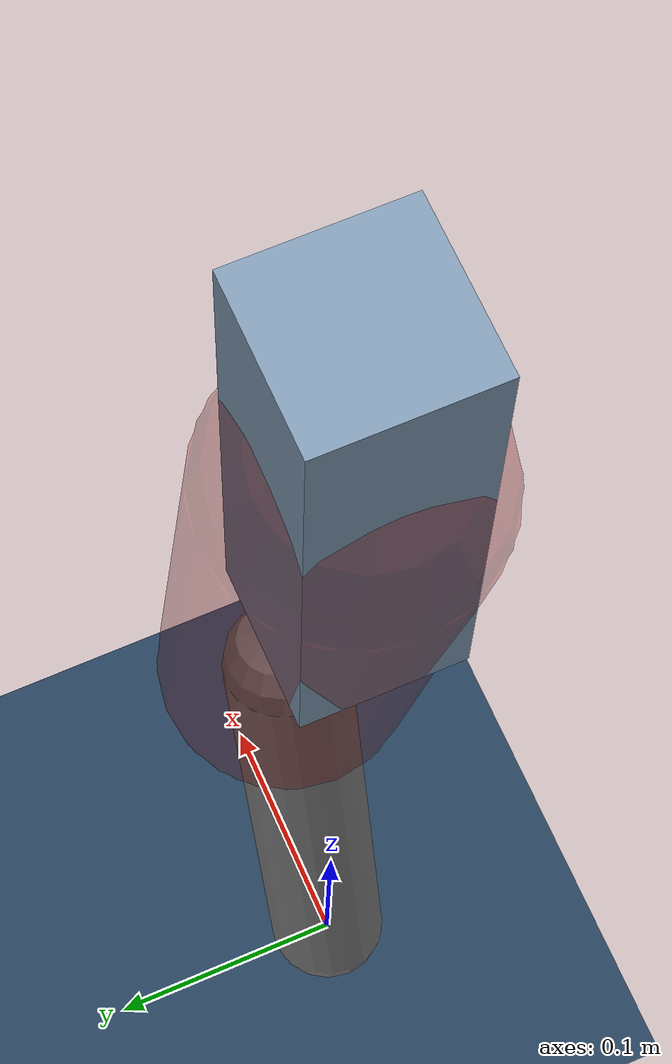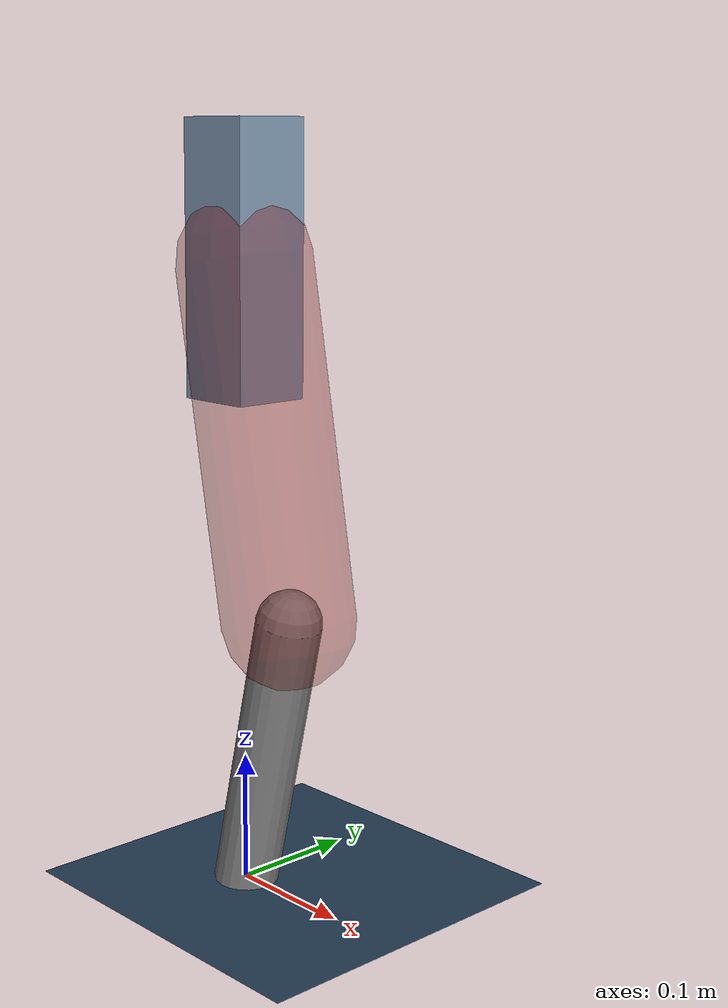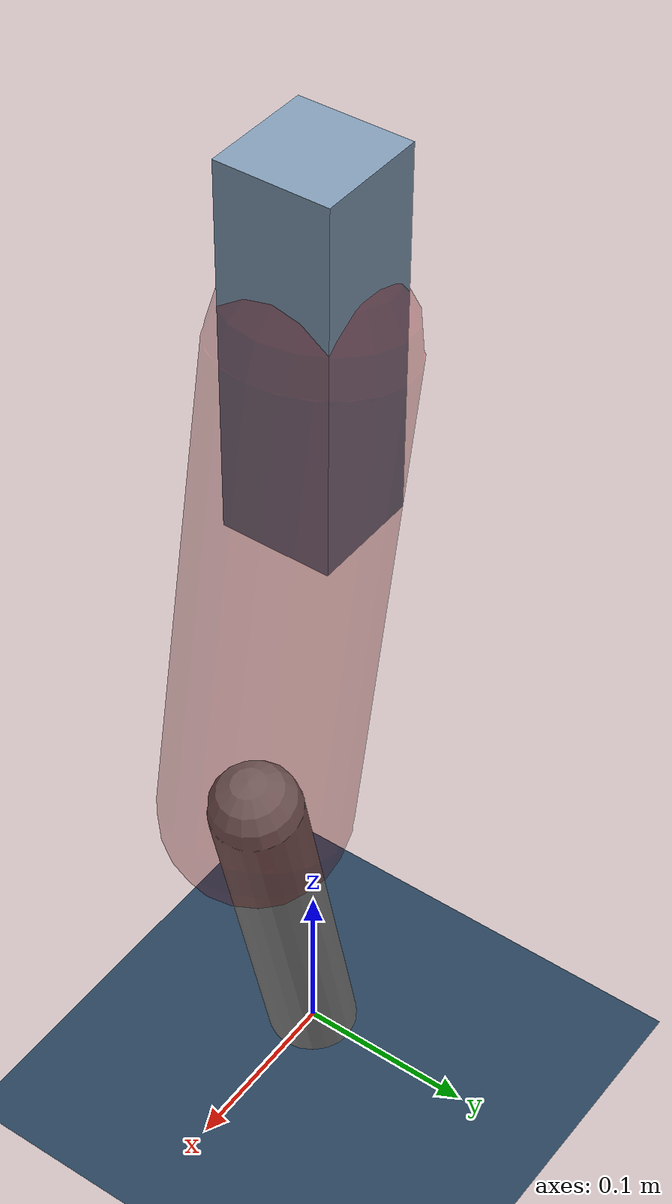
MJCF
<mujoco model="Hopper2D">
	<compiler inertiafromgeom="true" angle="radian" />
	<option timestep="0.001" integrator="implicit" cone="elliptic" solver="Newton" tolerance="1e-10" />

	<default>
		<geom contype="1" conaffinity="1" condim="3" friction="2 0.005 0.0001" solref="0.005 1" />
		<joint limited="true" damping="0.1" />
	</default>

	<asset>
		<texture name="skybox" type="skybox" builtin="gradient" rgb1=".4 .6 .8" rgb2="0 0 0" width="800" height="800" />
		<texture name="grid" type="2d" builtin="checker" rgb1=".1 .2 .3" rgb2=".2 .3 .4" width="300" height="300" mark="edge" markrgb=".2 .3 .4" />
		<material name="ground" texture="grid" texrepeat="1 1" texuniform="true" reflectance="0.1" />
		<material name="leg" rgba="0.5 0.6 0.7 1" />
	</asset>

	<worldbody>

		<geom name="floor" type="plane" size="5 5 0.25" material="ground" />

		<light directional="false" diffuse="0.8 0.8 0.8" specular="0.3 0.3 0.3" pos="0 0 2" dir="0 0 -1" />
		<light mode="targetbodycom" target="base" directional="false" diffuse="0.8 0.8 0.8" specular="0.3 0.3 0.3" pos="0 0 2" dir="0 0 -1" />

		<camera name="fixed" pos="0 -2 1" xyaxes="1 0 0 0 0 1" />
		<camera name="tracking" mode="trackcom" pos="0 -3 1" />

		<body name="root" pos="0 0 0.47788507465274316">
			<joint name="slide_x" type="slide" axis="1 0 0" range="-100 100" />
			<joint name="slide_z" type="slide" axis="0 0 1" range="0 10" />

			<body name="base" pos="0 0 0">
				<geom name="torso" type="box" size="0.03 0.03 0.1" mass="2.9459999999999997" material="leg" />

				<body name="link1" pos="0 0 0" euler="0 1.3850823161918069 0">
					<joint type="hinge" axis="0 -1 0" pos="0 0 0" name="hinge1" limited="true" range="-3.14 3.14" stiffness="0" damping="0.1" />
					<geom name="thigh" type="capsule" fromto="0 0 0 0.2650681082961194 0 0" size="0.05" rgba="0.5 0 0 0.3" mass="0.8956770815699103" />

					<body name="link2" pos="0.2650681082961194 0 0" euler="0 0.4071818155709971 0">
						<joint type="hinge" axis="0 -1 0" pos="0 0 0" name="hinge2" limited="true" range="-3.14 3.14" stiffness="0" damping="0.1" />
						<geom name="shank" type="capsule" fromto="0 0 0 0.2228169663566238 0 0" size="0.025" mass="0.42003526972096145" />

					</body>
				</body>
			</body>
		</body>
	</worldbody>

	<actuator>
		<motor name="torque1" joint="hinge1" ctrlrange="-66.94317323316297 66.94317323316297" ctrllimited="true" gear="1" />
		<motor name="torque2" joint="hinge2" ctrlrange="-148.65984280380908 148.65984280380908" ctrllimited="true" gear="1" />
	</actuator>
</mujoco>
